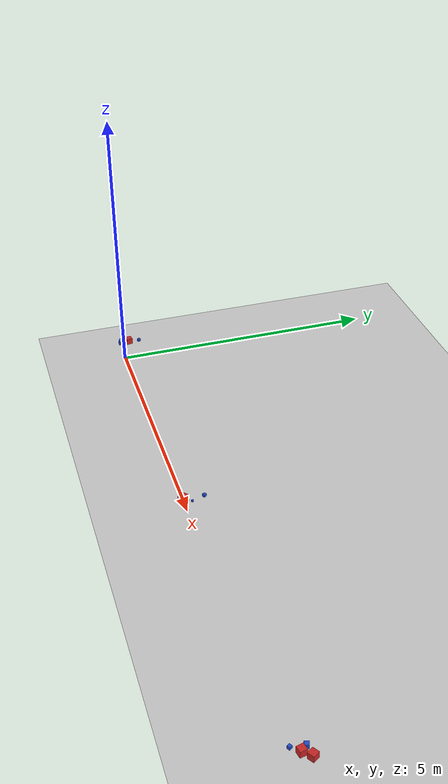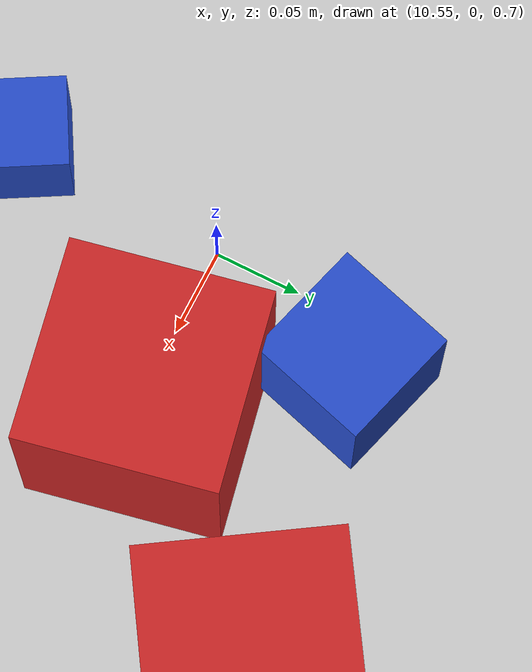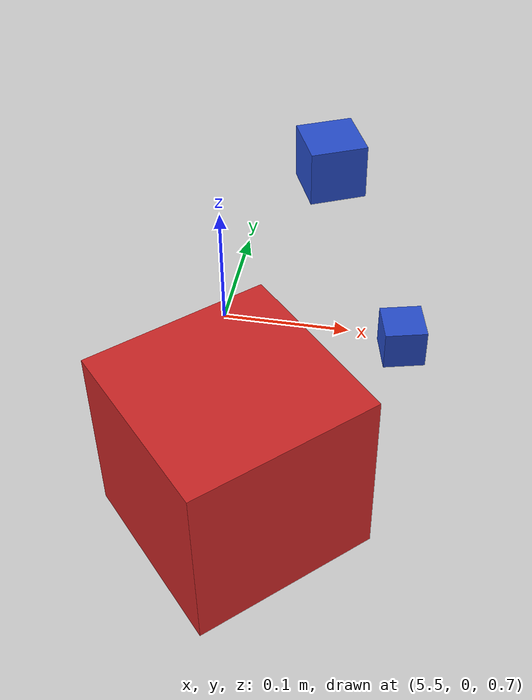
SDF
<sdf version="1.4">
 <world name="simple">
  <include><uri>model://ground_plane</uri></include>
  <include><uri>model://sun</uri></include>
  <include>
   <uri>model://red_cube11cm</uri>
   <name>block11</name>
   <pose>0.576025972492 0.000203203859151 0.75 0 0 -1.42873483472</pose>
  </include>
  <include>
   <uri>model://blue_cube9cm</uri>
   <name>block12</name>
   <pose>0.593780560592 -0.148179164557 0.75 0 0 -1.97190504596</pose>
  </include>
  <include>
   <uri>model://blue_cube5cm</uri>
   <name>block14</name>
   <pose>0.612778009528 0.189412546813 0.75 0 0 2.1600631333</pose>
  </include>
  <include>
   <uri>model://red_cube13cm</uri>
   <name>block21</name>
   <pose>5.54638399247 -0.18197049895 0.75 0 0 -0.813499272169</pose>
  </include>
  <include>
   <uri>model://blue_cube5cm</uri>
   <name>block22</name>
   <pose>5.56206821623 0.161455926293 0.75 0 0 -2.71321060349</pose>
  </include>
  <include>
   <uri>model://blue_cube3cm</uri>
   <name>block24</name>
   <pose>5.64361409644 -0.0543766777923 0.75 0 0 1.81676015667</pose>
  </include>
  <include>
   <uri>model://red_cube11cm</uri>
   <name>block31</name>
   <pose>10.7520597982 0.122450444428 0.75 0 0 -2.57231066037</pose>
  </include>
  <include>
   <uri>model://blue_cube7cm</uri>
   <name>block32</name>
   <pose>10.5860179171 0.0969480882907 0.75 0 0 -1.85383928604</pose>
  </include>
  <include>
   <uri>model://red_cube11cm</uri>
   <name>block33</name>
   <pose>10.648752704 0.00950958628107 0.75 0 0 -2.93994334017</pose>
  </include>
  <include>
   <uri>model://blue_cube5cm</uri>
   <name>block34</name>
   <pose>10.5526725167 -0.11463550273 0.75 0 0 -1.05364311364</pose>
  </include>
 </world>
</sdf>

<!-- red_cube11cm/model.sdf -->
<sdf version='1.4'>
  <model name="red_cube11cm">
      <static>0</static>
      <link name='link'>
        <inertial>
          <mass>0.3</mass>
          <inertia>
            <ixx>0.001</ixx>
            <ixy>0.000000</ixy>
            <ixz>0.000000</ixz>
            <iyy>0.001</iyy>
            <iyz>0.000000</iyz>
            <izz>0.001</izz>
          </inertia>
        </inertial>
        <collision name='collision'>
          <geometry>
            <box>
              <size>0.110 0.110 0.110</size>
            </box>
          </geometry>
          <surface>
            <friction>
              <ode>
                <mu>5.0</mu>
                <mu2>5.0</mu2>
              </ode>
            </friction>
            <contact>
              <ode>
                <kp>1000000.0</kp>
                <kd>100.0</kd>
                <max_vel>1.0</max_vel>
                <min_depth>0.002</min_depth>
              </ode>
            </contact>
          </surface>
        </collision>
        <visual name='visual'>
          <geometry>
            <box>
              <size>0.110 0.110 0.110</size>
            </box>
          </geometry>
          <material>
            <script>
              <uri>file://media/materials/scripts/gazebo.material</uri>
              <name>Gazebo/Red</name>
            </script>
          </material>
        </visual>
        <velocity_decay>
          <linear>0.000000</linear>
          <angular>0.000000</angular>
        </velocity_decay>
        <self_collide>0</self_collide>
        <kinematic>0</kinematic>
        <gravity>1</gravity>
      </link>
  </model>
</sdf>

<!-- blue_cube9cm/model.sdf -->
<sdf version='1.4'>
  <model name="blue_cube9cm">
      <static>0</static>
      <link name='link'>
        <inertial>
          <mass>0.3</mass>
          <inertia>
            <ixx>0.001</ixx>
            <ixy>0.000000</ixy>
            <ixz>0.000000</ixz>
            <iyy>0.001</iyy>
            <iyz>0.000000</iyz>
            <izz>0.001</izz>
          </inertia>
        </inertial>
        <collision name='collision'>
          <geometry>
            <box>
              <size>0.090 0.090 0.090</size>
            </box>
          </geometry>
          <surface>
            <friction>
              <ode>
                <mu>5.0</mu>
                <mu2>5.0</mu2>
              </ode>
            </friction>
            <contact>
              <ode>
                <kp>1000000.0</kp>
                <kd>100.0</kd>
                <max_vel>1.0</max_vel>
                <min_depth>0.002</min_depth>
              </ode>
            </contact>
          </surface>
        </collision>
        <visual name='visual'>
          <geometry>
            <box>
              <size>0.090 0.090 0.090</size>
            </box>
          </geometry>
          <material>
            <script>
              <uri>file://media/materials/scripts/gazebo.material</uri>
              <name>Gazebo/Blue</name>
            </script>
          </material>
        </visual>
        <velocity_decay>
          <linear>0.000000</linear>
          <angular>0.000000</angular>
        </velocity_decay>
        <self_collide>0</self_collide>
        <kinematic>0</kinematic>
        <gravity>1</gravity>
      </link>
  </model>
</sdf>

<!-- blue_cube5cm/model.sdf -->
<sdf version='1.4'>
  <model name="blue_cube5cm">
      <static>0</static>
      <link name='link'>
        <inertial>
          <mass>0.3</mass>
          <inertia>
            <ixx>0.001</ixx>
            <ixy>0.000000</ixy>
            <ixz>0.000000</ixz>
            <iyy>0.001</iyy>
            <iyz>0.000000</iyz>
            <izz>0.001</izz>
          </inertia>
        </inertial>
        <collision name='collision'>
          <geometry>
            <box>
              <size>0.050 0.050 0.050</size>
            </box>
          </geometry>
          <surface>
            <friction>
              <ode>
                <mu>5.0</mu>
                <mu2>5.0</mu2>
              </ode>
            </friction>
            <contact>
              <ode>
                <kp>1000000.0</kp>
                <kd>100.0</kd>
                <max_vel>1.0</max_vel>
                <min_depth>0.002</min_depth>
              </ode>
            </contact>
          </surface>
        </collision>
        <visual name='visual'>
          <geometry>
            <box>
              <size>0.050 0.050 0.050</size>
            </box>
          </geometry>
          <material>
            <script>
              <uri>file://media/materials/scripts/gazebo.material</uri>
              <name>Gazebo/Blue</name>
            </script>
          </material>
        </visual>
        <velocity_decay>
          <linear>0.000000</linear>
          <angular>0.000000</angular>
        </velocity_decay>
        <self_collide>0</self_collide>
        <kinematic>0</kinematic>
        <gravity>1</gravity>
      </link>
  </model>
</sdf>

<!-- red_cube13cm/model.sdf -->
<sdf version='1.4'>
  <model name="red_cube13cm">
      <static>0</static>
      <link name='link'>
        <inertial>
          <mass>0.3</mass>
          <inertia>
            <ixx>0.001</ixx>
            <ixy>0.000000</ixy>
            <ixz>0.000000</ixz>
            <iyy>0.001</iyy>
            <iyz>0.000000</iyz>
            <izz>0.001</izz>
          </inertia>
        </inertial>
        <collision name='collision'>
          <geometry>
            <box>
              <size>0.130 0.130 0.130</size>
            </box>
          </geometry>
          <surface>
            <friction>
              <ode>
                <mu>5.0</mu>
                <mu2>5.0</mu2>
              </ode>
            </friction>
            <contact>
              <ode>
                <kp>1000000.0</kp>
                <kd>100.0</kd>
                <max_vel>1.0</max_vel>
                <min_depth>0.002</min_depth>
              </ode>
            </contact>
          </surface>
        </collision>
        <visual name='visual'>
          <geometry>
            <box>
              <size>0.130 0.130 0.130</size>
            </box>
          </geometry>
          <material>
            <script>
              <uri>file://media/materials/scripts/gazebo.material</uri>
              <name>Gazebo/Red</name>
            </script>
          </material>
        </visual>
        <velocity_decay>
          <linear>0.000000</linear>
          <angular>0.000000</angular>
        </velocity_decay>
        <self_collide>0</self_collide>
        <kinematic>0</kinematic>
        <gravity>1</gravity>
      </link>
  </model>
</sdf>

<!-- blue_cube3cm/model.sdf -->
<sdf version='1.4'>
  <model name="blue_cube3cm">
      <static>0</static>
      <link name='link'>
        <inertial>
          <mass>0.3</mass>
          <inertia>
            <ixx>0.001</ixx>
            <ixy>0.000000</ixy>
            <ixz>0.000000</ixz>
            <iyy>0.001</iyy>
            <iyz>0.000000</iyz>
            <izz>0.001</izz>
          </inertia>
        </inertial>
        <collision name='collision'>
          <geometry>
            <box>
              <size>0.030 0.030 0.030</size>
            </box>
          </geometry>
          <surface>
            <friction>
              <ode>
                <mu>5.0</mu>
                <mu2>5.0</mu2>
              </ode>
            </friction>
            <contact>
              <ode>
                <kp>1000000.0</kp>
                <kd>100.0</kd>
                <max_vel>1.0</max_vel>
                <min_depth>0.002</min_depth>
              </ode>
            </contact>
          </surface>
        </collision>
        <visual name='visual'>
          <geometry>
            <box>
              <size>0.030 0.030 0.030</size>
            </box>
          </geometry>
          <material>
            <script>
              <uri>file://media/materials/scripts/gazebo.material</uri>
              <name>Gazebo/Blue</name>
            </script>
          </material>
        </visual>
        <velocity_decay>
          <linear>0.000000</linear>
          <angular>0.000000</angular>
        </velocity_decay>
        <self_collide>0</self_collide>
        <kinematic>0</kinematic>
        <gravity>1</gravity>
      </link>
  </model>
</sdf>

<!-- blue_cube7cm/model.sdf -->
<sdf version='1.4'>
  <model name="blue_cube7cm">
      <static>0</static>
      <link name='link'>
        <inertial>
          <mass>0.3</mass>
          <inertia>
            <ixx>0.001</ixx>
            <ixy>0.000000</ixy>
            <ixz>0.000000</ixz>
            <iyy>0.001</iyy>
            <iyz>0.000000</iyz>
            <izz>0.001</izz>
          </inertia>
        </inertial>
        <collision name='collision'>
          <geometry>
            <box>
              <size>0.070 0.070 0.070</size>
            </box>
          </geometry>
          <surface>
            <friction>
              <ode>
                <mu>5.0</mu>
                <mu2>5.0</mu2>
              </ode>
            </friction>
            <contact>
              <ode>
                <kp>1000000.0</kp>
                <kd>100.0</kd>
                <max_vel>1.0</max_vel>
                <min_depth>0.002</min_depth>
              </ode>
            </contact>
          </surface>
        </collision>
        <visual name='visual'>
          <geometry>
            <box>
              <size>0.070 0.070 0.070</size>
            </box>
          </geometry>
          <material>
            <script>
              <uri>file://media/materials/scripts/gazebo.material</uri>
              <name>Gazebo/Blue</name>
            </script>
          </material>
        </visual>
        <velocity_decay>
          <linear>0.000000</linear>
          <angular>0.000000</angular>
        </velocity_decay>
        <self_collide>0</self_collide>
        <kinematic>0</kinematic>
        <gravity>1</gravity>
      </link>
  </model>
</sdf>
